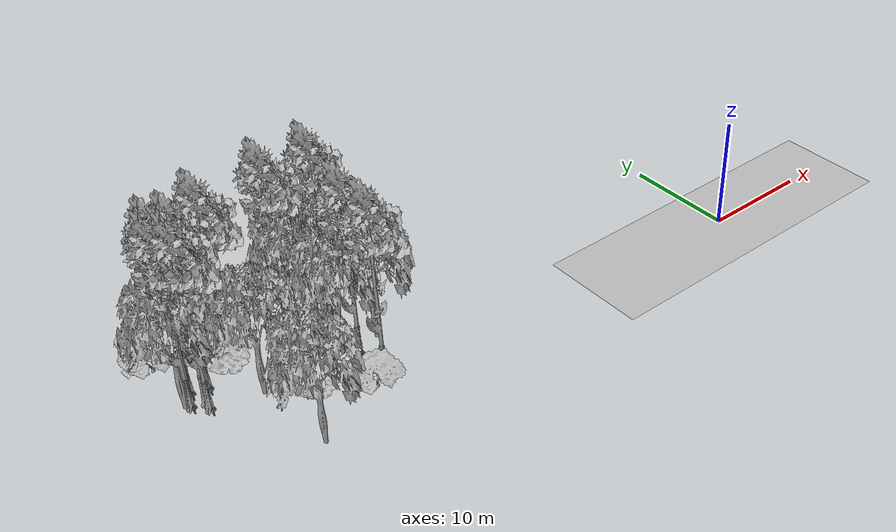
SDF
<sdf version="1.7">
 <world name="default">
  <model name="ground_plane">
   <static>1</static>
   <link name="link">
    <collision name="collision">
     <pose>-50 0 0 0 -0 0</pose>
     <geometry><plane><normal>0 0 1</normal><size>100 100</size></plane></geometry>
     <surface><contact><ode><min_depth>0.01</min_depth><max_vel>0</max_vel></ode></contact></surface>
    </collision>
    <visual name="grass">
     <cast_shadows>0</cast_shadows>
     <geometry>
      <mesh>
       <scale>0.5814285714285714 0.18142857142857144 0.1</scale>
       <uri>file://grass_plane/meshes/grass_plane.dae</uri>
      </mesh>
     </geometry>
    </visual>
   </link>
  </model>
  <model name="Tree 3">
   <static>1</static>
   <pose>-35.63989932845678 11.19704138836834 0 1.57079 -0 0</pose>
   <link name="link">
    <collision name="collision">
     <geometry><mesh><scale>3.5 5 3.5</scale><uri>model://tree_2/meshes/tree_2.obj</uri></mesh></geometry>
    </collision>
    <visual name="visual">
     <geometry><mesh><scale>3.5 5 3.5</scale><uri>model://tree_2/meshes/tree_2.obj</uri></mesh></geometry>
    </visual>
   </link>
  </model>
  <model name="Tree 8">
   <static>1</static>
   <pose>-38.38184937173636 10.735725459265133 0 1.57079 -0 0</pose>
   <link name="link">
    <collision name="collision">
     <geometry><mesh><scale>4 2.5 4</scale><uri>model://tree_1/meshes/tree_1.obj</uri></mesh></geometry>
    </collision>
    <visual name="visual">
     <geometry><mesh><scale>4 2.5 4</scale><uri>model://tree_1/meshes/tree_1.obj</uri></mesh></geometry>
    </visual>
   </link>
  </model>
  <model name="Tree 13">
   <static>1</static>
   <pose>-47.10310080382826 11.049040701368767 0 1.57079 -0 0</pose>
   <link name="link">
    <collision name="collision">
     <geometry><mesh><scale>3.5 5 3.5</scale><uri>model://tree_9/meshes/tree_9.obj</uri></mesh></geometry>
    </collision>
    <visual name="visual">
     <geometry><mesh><scale>3.5 5 3.5</scale><uri>model://tree_9/meshes/tree_9.obj</uri></mesh></geometry>
    </visual>
   </link>
  </model>
  <model name="Tree 27">
   <static>1</static>
   <pose>-45.83507582881795 14.691953521509792 0 1.57079 -0 0</pose>
   <link name="link">
    <collision name="collision">
     <geometry><mesh><scale>4 2.5 4</scale><uri>model://tree_1/meshes/tree_1.obj</uri></mesh></geometry>
    </collision>
    <visual name="visual">
     <geometry><mesh><scale>4 2.5 4</scale><uri>model://tree_1/meshes/tree_1.obj</uri></mesh></geometry>
    </visual>
   </link>
  </model>
  <model name="Tree 52">
   <static>1</static>
   <pose>-43.65605588504617 13.027633290185037 0 1.57079 -0 0</pose>
   <link name="link">
    <collision name="collision">
     <geometry><mesh><scale>4 2.5 4</scale><uri>model://tree_1/meshes/tree_1.obj</uri></mesh></geometry>
    </collision>
    <visual name="visual">
     <geometry><mesh><scale>4 2.5 4</scale><uri>model://tree_1/meshes/tree_1.obj</uri></mesh></geometry>
    </visual>
   </link>
  </model>
  <model name="Tree 60">
   <static>1</static>
   <pose>-48.294392250487554 9.566903280654895 0 1.57079 -0 0</pose>
   <link name="link">
    <collision name="collision">
     <geometry><mesh><scale>3.5 5 3.5</scale><uri>model://tree_2/meshes/tree_2.obj</uri></mesh></geometry>
    </collision>
    <visual name="visual">
     <geometry><mesh><scale>3.5 5 3.5</scale><uri>model://tree_2/meshes/tree_2.obj</uri></mesh></geometry>
    </visual>
   </link>
  </model>
  <model name="Tree 87">
   <static>1</static>
   <pose>-45.76389915857702 10.679068581477424 0 1.57079 -0 0</pose>
   <link name="link">
    <collision name="collision">
     <geometry><mesh><scale>3.5 5 3.5</scale><uri>model://tree_9/meshes/tree_9.obj</uri></mesh></geometry>
    </collision>
    <visual name="visual">
     <geometry><mesh><scale>3.5 5 3.5</scale><uri>model://tree_9/meshes/tree_9.obj</uri></mesh></geometry>
    </visual>
   </link>
  </model>
  <model name="Tree 96">
   <static>1</static>
   <pose>-32.70405275662104 7.0218509577434425 0 1.57079 -0 0</pose>
   <link name="link">
    <collision name="collision">
     <geometry><mesh><scale>3.5 5 3.5</scale><uri>model://tree_2/meshes/tree_2.obj</uri></mesh></geometry>
    </collision>
    <visual name="visual">
     <geometry><mesh><scale>3.5 5 3.5</scale><uri>model://tree_2/meshes/tree_2.obj</uri></mesh></geometry>
    </visual>
   </link>
  </model>
  <model name="Tree 105">
   <static>1</static>
   <pose>-42.313845864367245 -0.2564601509947053 0 1.57079 -0 0</pose>
   <link name="link">
    <collision name="collision">
     <geometry><mesh><scale>3.5 5 3.5</scale><uri>model://tree_2/meshes/tree_2.obj</uri></mesh></geometry>
    </collision>
    <visual name="visual">
     <geometry><mesh><scale>3.5 5 3.5</scale><uri>model://tree_2/meshes/tree_2.obj</uri></mesh></geometry>
    </visual>
   </link>
  </model>
  <model name="Tree 126">
   <static>1</static>
   <pose>-35.956325249876556 2.168496255159262 0 1.57079 -0 0</pose>
   <link name="link">
    <collision name="collision">
     <geometry><mesh><scale>3 2 3</scale><uri>model://tree_3/meshes/tree_3.obj</uri></mesh></geometry>
    </collision>
    <visual name="visual">
     <geometry><mesh><scale>3 2 3</scale><uri>model://tree_3/meshes/tree_3.obj</uri></mesh></geometry>
    </visual>
   </link>
  </model>
  <model name="Tree 129">
   <static>1</static>
   <pose>-46.781273654248615 8.564526418266333 0 1.57079 -0 0</pose>
   <link name="link">
    <collision name="collision">
     <geometry><mesh><scale>3.5 5 3.5</scale><uri>model://tree_9/meshes/tree_9.obj</uri></mesh></geometry>
    </collision>
    <visual name="visual">
     <geometry><mesh><scale>3.5 5 3.5</scale><uri>model://tree_9/meshes/tree_9.obj</uri></mesh></geometry>
    </visual>
   </link>
  </model>
  <model name="Tree 142">
   <static>1</static>
   <pose>-46.68228197348893 9.353310696117806 0 1.57079 -0 0</pose>
   <link name="link">
    <collision name="collision">
     <geometry><mesh><scale>3.5 5 3.5</scale><uri>model://tree_9/meshes/tree_9.obj</uri></mesh></geometry>
    </collision>
    <visual name="visual">
     <geometry><mesh><scale>3.5 5 3.5</scale><uri>model://tree_9/meshes/tree_9.obj</uri></mesh></geometry>
    </visual>
   </link>
  </model>
  <model name="Tree 168">
   <static>1</static>
   <pose>-43.08048210411974 12.02672033187745 0 1.57079 -0 0</pose>
   <link name="link">
    <collision name="collision">
     <geometry><mesh><scale>3.5 5 3.5</scale><uri>model://tree_9/meshes/tree_9.obj</uri></mesh></geometry>
    </collision>
    <visual name="visual">
     <geometry><mesh><scale>3.5 5 3.5</scale><uri>model://tree_9/meshes/tree_9.obj</uri></mesh></geometry>
    </visual>
   </link>
  </model>
  <model name="Tree 173">
   <static>1</static>
   <pose>-48.1120788571384 14.929844728038926 0 1.57079 -0 0</pose>
   <link name="link">
    <collision name="collision">
     <geometry><mesh><scale>3 2 3</scale><uri>model://tree_3/meshes/tree_3.obj</uri></mesh></geometry>
    </collision>
    <visual name="visual">
     <geometry><mesh><scale>3 2 3</scale><uri>model://tree_3/meshes/tree_3.obj</uri></mesh></geometry>
    </visual>
   </link>
  </model>
  <model name="Tree 187">
   <static>1</static>
   <pose>-36.53882708976463 11.92098205613053 0 1.57079 -0 0</pose>
   <link name="link">
    <collision name="collision">
     <geometry><mesh><scale>3.5 5 3.5</scale><uri>model://tree_2/meshes/tree_2.obj</uri></mesh></geometry>
    </collision>
    <visual name="visual">
     <geometry><mesh><scale>3.5 5 3.5</scale><uri>model://tree_2/meshes/tree_2.obj</uri></mesh></geometry>
    </visual>
   </link>
  </model>
  <model name="Tree 192">
   <static>1</static>
   <pose>-33.54302731249633 12.507439984249967 0 1.57079 -0 0</pose>
   <link name="link">
    <collision name="collision">
     <geometry><mesh><scale>3.5 5 3.5</scale><uri>model://tree_9/meshes/tree_9.obj</uri></mesh></geometry>
    </collision>
    <visual name="visual">
     <geometry><mesh><scale>3.5 5 3.5</scale><uri>model://tree_9/meshes/tree_9.obj</uri></mesh></geometry>
    </visual>
   </link>
  </model>
  <model name="Tree 198">
   <static>1</static>
   <pose>-47.759225475968314 9.670288231838931 0 1.57079 -0 0</pose>
   <link name="link">
    <collision name="collision">
     <geometry><mesh><scale>3.5 5 3.5</scale><uri>model://tree_9/meshes/tree_9.obj</uri></mesh></geometry>
    </collision>
    <visual name="visual">
     <geometry><mesh><scale>3.5 5 3.5</scale><uri>model://tree_9/meshes/tree_9.obj</uri></mesh></geometry>
    </visual>
   </link>
  </model>
  <model name="Tree 206">
   <static>1</static>
   <pose>-42.95864129337093 7.097115167916574 0 1.57079 -0 0</pose>
   <link name="link">
    <collision name="collision">
     <geometry><mesh><scale>3.5 5 3.5</scale><uri>model://tree_2/meshes/tree_2.obj</uri></mesh></geometry>
    </collision>
    <visual name="visual">
     <geometry><mesh><scale>3.5 5 3.5</scale><uri>model://tree_2/meshes/tree_2.obj</uri></mesh></geometry>
    </visual>
   </link>
  </model>
  <model name="Tree 208">
   <static>1</static>
   <pose>-34.59200021605114 3.2848340976275416 0 1.57079 -0 0</pose>
   <link name="link">
    <collision name="collision">
     <geometry><mesh><scale>3.5 5 3.5</scale><uri>model://tree_9/meshes/tree_9.obj</uri></mesh></geometry>
    </collision>
    <visual name="visual">
     <geometry><mesh><scale>3.5 5 3.5</scale><uri>model://tree_9/meshes/tree_9.obj</uri></mesh></geometry>
    </visual>
   </link>
  </model>
  <model name="Tree 239">
   <static>1</static>
   <pose>-35.19651831530348 10.471808597948336 0 1.57079 -0 0</pose>
   <link name="link">
    <collision name="collision">
     <geometry><mesh><scale>3.5 5 3.5</scale><uri>model://tree_2/meshes/tree_2.obj</uri></mesh></geometry>
    </collision>
    <visual name="visual">
     <geometry><mesh><scale>3.5 5 3.5</scale><uri>model://tree_2/meshes/tree_2.obj</uri></mesh></geometry>
    </visual>
   </link>
  </model>
  <model name="Tree 244">
   <static>1</static>
   <pose>-43.725244803478084 11.730566557928089 0 1.57079 -0 0</pose>
   <link name="link">
    <collision name="collision">
     <geometry><mesh><scale>4 2.5 4</scale><uri>model://tree_1/meshes/tree_1.obj</uri></mesh></geometry>
    </collision>
    <visual name="visual">
     <geometry><mesh><scale>4 2.5 4</scale><uri>model://tree_1/meshes/tree_1.obj</uri></mesh></geometry>
    </visual>
   </link>
  </model>
  <model name="Tree 272">
   <static>1</static>
   <pose>-37.47440293739595 12.701264583713282 0 1.57079 -0 0</pose>
   <link name="link">
    <collision name="collision">
     <geometry><mesh><scale>3.5 5 3.5</scale><uri>model://tree_9/meshes/tree_9.obj</uri></mesh></geometry>
    </collision>
    <visual name="visual">
     <geometry><mesh><scale>3.5 5 3.5</scale><uri>model://tree_9/meshes/tree_9.obj</uri></mesh></geometry>
    </visual>
   </link>
  </model>
  <model name="Tree 277">
   <static>1</static>
   <pose>-34.68622905226481 6.481985377415278 0 1.57079 -0 0</pose>
   <link name="link">
    <collision name="collision">
     <geometry><mesh><scale>3.5 5 3.5</scale><uri>model://tree_9/meshes/tree_9.obj</uri></mesh></geometry>
    </collision>
    <visual name="visual">
     <geometry><mesh><scale>3.5 5 3.5</scale><uri>model://tree_9/meshes/tree_9.obj</uri></mesh></geometry>
    </visual>
   </link>
  </model>
  <model name="Tree 282">
   <static>1</static>
   <pose>-35.870590731071786 7.127879912039422 0 1.57079 -0 0</pose>
   <link name="link">
    <collision name="collision">
     <geometry><mesh><scale>3.5 5 3.5</scale><uri>model://tree_2/meshes/tree_2.obj</uri></mesh></geometry>
    </collision>
    <visual name="visual">
     <geometry><mesh><scale>3.5 5 3.5</scale><uri>model://tree_2/meshes/tree_2.obj</uri></mesh></geometry>
    </visual>
   </link>
  </model>
  <model name="Tree 284">
   <static>1</static>
   <pose>-40.028498129079 4.946467311243662 0 1.57079 -0 0</pose>
   <link name="link">
    <collision name="collision">
     <geometry><mesh><scale>4 2.5 4</scale><uri>model://tree_1/meshes/tree_1.obj</uri></mesh></geometry>
    </collision>
    <visual name="visual">
     <geometry><mesh><scale>4 2.5 4</scale><uri>model://tree_1/meshes/tree_1.obj</uri></mesh></geometry>
    </visual>
   </link>
  </model>
 </world>
</sdf>
